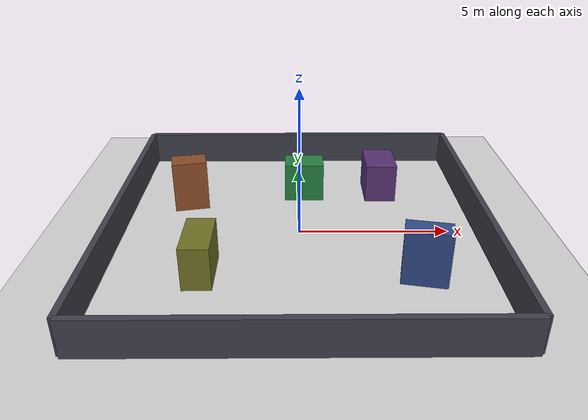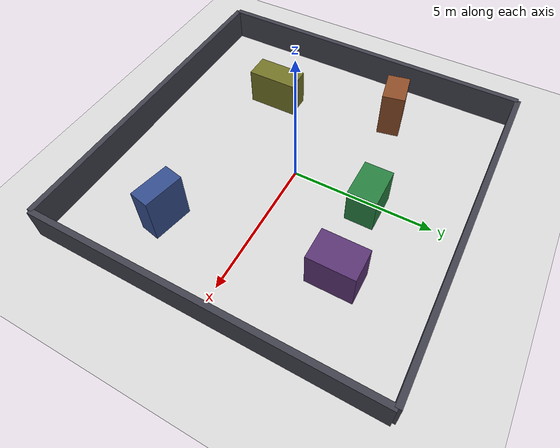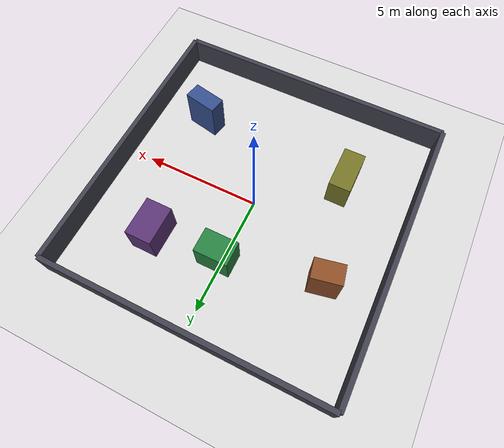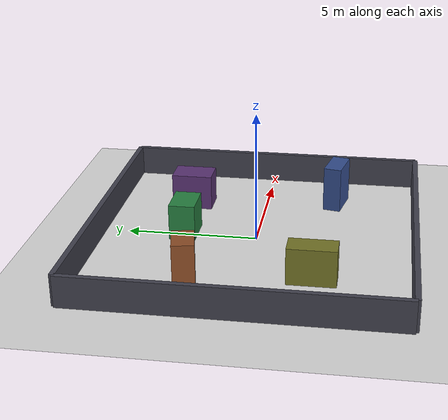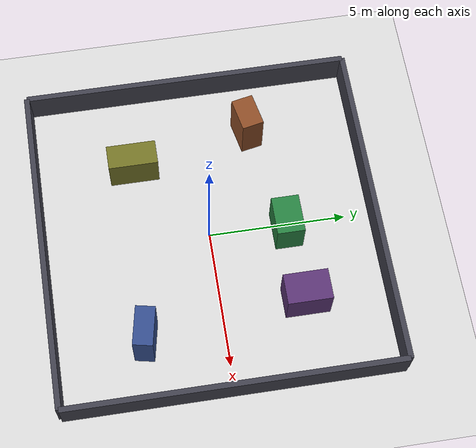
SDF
<?xml version="1.0"?>
<sdf version="1.6">
  <world name="training_map">
    <!-- Self-contained light source (avoid dependency on model://sun) -->
    <light name="sun" type="directional">
      <cast_shadows>true</cast_shadows>
      <pose>0 0 20 0 0 0</pose>
      <diffuse>0.8 0.8 0.8 1</diffuse>
      <specular>0.2 0.2 0.2 1</specular>
      <attenuation>
        <range>1000</range>
        <constant>0.9</constant>
        <linear>0.01</linear>
        <quadratic>0.001</quadratic>
      </attenuation>
      <direction>-0.4 0.1 -0.9</direction>
    </light>

    <!-- Self-contained ground plane (avoid dependency on model://ground_plane) -->
    <model name="ground_plane_local">
      <static>true</static>
      <link name="link">
        <collision name="collision">
          <geometry>
            <plane>
              <normal>0 0 1</normal>
              <size>200 200</size>
            </plane>
          </geometry>
          <surface>
            <friction>
              <ode>
                <mu>1.2</mu>
                <mu2>1.2</mu2>
              </ode>
            </friction>
          </surface>
        </collision>
        <visual name="visual">
          <geometry>
            <plane>
              <normal>0 0 1</normal>
              <size>200 200</size>
            </plane>
          </geometry>
          <material>
            <ambient>0.78 0.78 0.78 1</ambient>
            <diffuse>0.84 0.84 0.84 1</diffuse>
          </material>
        </visual>
      </link>
    </model>

    <scene>
      <ambient>0.4 0.4 0.4 1</ambient>
      <background>0.8 0.8 0.8 1</background>
      <shadows>true</shadows>
    </scene>

    <physics type="ode">
      <real_time_update_rate>1000</real_time_update_rate>
      <max_step_size>0.001</max_step_size>
      <real_time_factor>1</real_time_factor>
    </physics>

    <!-- Boundary walls -->
    <model name="wall_north">
      <static>true</static>
      <pose>0 6 0.60 0 0 0</pose>
      <link name="link">
        <collision name="collision">
          <geometry>
            <box>
              <size>12 0.2 1.2</size>
            </box>
          </geometry>
        </collision>
        <visual name="visual">
          <geometry>
            <box>
              <size>12 0.2 1.2</size>
            </box>
          </geometry>
          <material>
            <ambient>0.2 0.2 0.25 1</ambient>
            <diffuse>0.25 0.25 0.30 1</diffuse>
          </material>
        </visual>
      </link>
    </model>

    <model name="wall_south">
      <static>true</static>
      <pose>0 -6 0.60 0 0 0</pose>
      <link name="link">
        <collision name="collision">
          <geometry>
            <box>
              <size>12 0.2 1.2</size>
            </box>
          </geometry>
        </collision>
        <visual name="visual">
          <geometry>
            <box>
              <size>12 0.2 1.2</size>
            </box>
          </geometry>
          <material>
            <ambient>0.2 0.2 0.25 1</ambient>
            <diffuse>0.25 0.25 0.30 1</diffuse>
          </material>
        </visual>
      </link>
    </model>

    <model name="wall_west">
      <static>true</static>
      <pose>-6 0 0.60 0 0 0</pose>
      <link name="link">
        <collision name="collision">
          <geometry>
            <box>
              <size>0.2 12 1.2</size>
            </box>
          </geometry>
        </collision>
        <visual name="visual">
          <geometry>
            <box>
              <size>0.2 12 1.2</size>
            </box>
          </geometry>
          <material>
            <ambient>0.2 0.2 0.25 1</ambient>
            <diffuse>0.25 0.25 0.30 1</diffuse>
          </material>
        </visual>
      </link>
    </model>

    <model name="wall_east">
      <static>true</static>
      <pose>6 0 0.60 0 0 0</pose>
      <link name="link">
        <collision name="collision">
          <geometry>
            <box>
              <size>0.2 12 1.2</size>
            </box>
          </geometry>
        </collision>
        <visual name="visual">
          <geometry>
            <box>
              <size>0.2 12 1.2</size>
            </box>
          </geometry>
          <material>
            <ambient>0.2 0.2 0.25 1</ambient>
            <diffuse>0.25 0.25 0.30 1</diffuse>
          </material>
        </visual>
      </link>
    </model>

    <!-- Obstacles -->
    <model name="block_center">
      <static>true</static>
      <pose>0.2 2.8 0.70 0 0 0</pose>
      <link name="link">
        <collision name="collision">
          <geometry>
            <box>
              <size>1.4 1.0 1.4</size>
            </box>
          </geometry>
        </collision>
        <visual name="visual">
          <geometry>
            <box>
              <size>1.4 1.0 1.4</size>
            </box>
          </geometry>
          <material>
            <ambient>0.1 0.35 0.2 1</ambient>
            <diffuse>0.15 0.5 0.25 1</diffuse>
          </material>
        </visual>
      </link>
    </model>

    <model name="block_nw">
      <static>true</static>
      <pose>-3.9 2.0 0.90 0 0 0.20</pose>
      <link name="link">
        <collision name="collision">
          <geometry>
            <box>
              <size>1.2 0.8 1.8</size>
            </box>
          </geometry>
        </collision>
        <visual name="visual">
          <geometry>
            <box>
              <size>1.2 0.8 1.8</size>
            </box>
          </geometry>
          <material>
            <ambient>0.35 0.2 0.1 1</ambient>
            <diffuse>0.55 0.3 0.15 1</diffuse>
          </material>
        </visual>
      </link>
    </model>

    <model name="block_se">
      <static>true</static>
      <pose>3.7 -2.8 0.90 0 0 -0.20</pose>
      <link name="link">
        <collision name="collision">
          <geometry>
            <box>
              <size>1.4 0.7 1.8</size>
            </box>
          </geometry>
        </collision>
        <visual name="visual">
          <geometry>
            <box>
              <size>1.4 0.7 1.8</size>
            </box>
          </geometry>
          <material>
            <ambient>0.15 0.2 0.35 1</ambient>
            <diffuse>0.2 0.3 0.55 1</diffuse>
          </material>
        </visual>
      </link>
    </model>

    <model name="block_left_lane">
      <static>true</static>
      <pose>-3.0 -2.4 0.70 0 0 0</pose>
      <link name="link">
        <collision name="collision">
          <geometry>
            <box>
              <size>0.9 1.8 1.4</size>
            </box>
          </geometry>
        </collision>
        <visual name="visual">
          <geometry>
            <box>
              <size>0.9 1.8 1.4</size>
            </box>
          </geometry>
          <material>
            <ambient>0.3 0.3 0.1 1</ambient>
            <diffuse>0.45 0.45 0.15 1</diffuse>
          </material>
        </visual>
      </link>
    </model>

    <model name="block_right_lane">
      <static>true</static>
      <pose>3.0 3.0 0.70 0 0 0</pose>
      <link name="link">
        <collision name="collision">
          <geometry>
            <box>
              <size>1.1 1.6 1.4</size>
            </box>
          </geometry>
        </collision>
        <visual name="visual">
          <geometry>
            <box>
              <size>1.1 1.6 1.4</size>
            </box>
          </geometry>
          <material>
            <ambient>0.2 0.1 0.3 1</ambient>
            <diffuse>0.35 0.2 0.45 1</diffuse>
          </material>
        </visual>
      </link>
    </model>
  </world>
</sdf>
